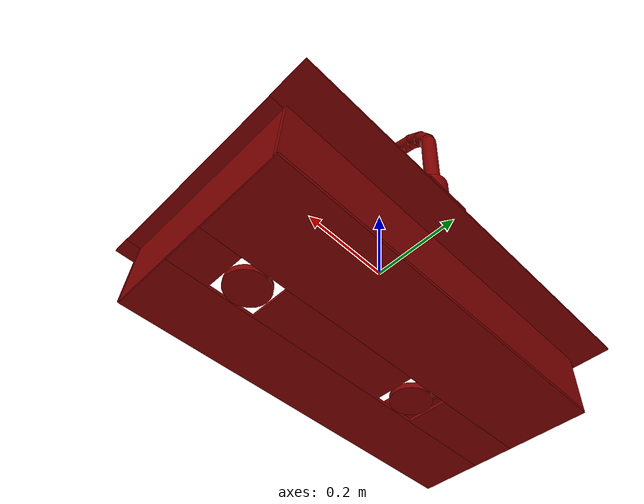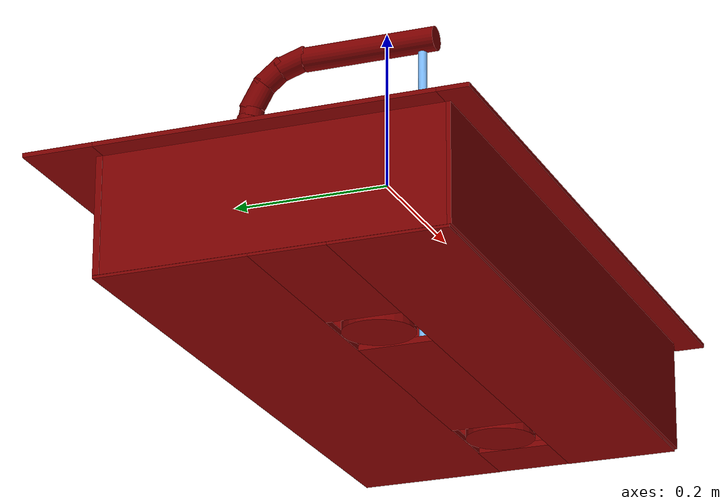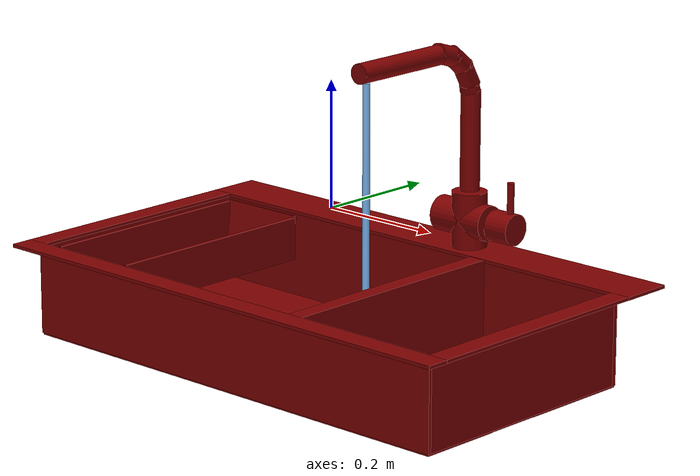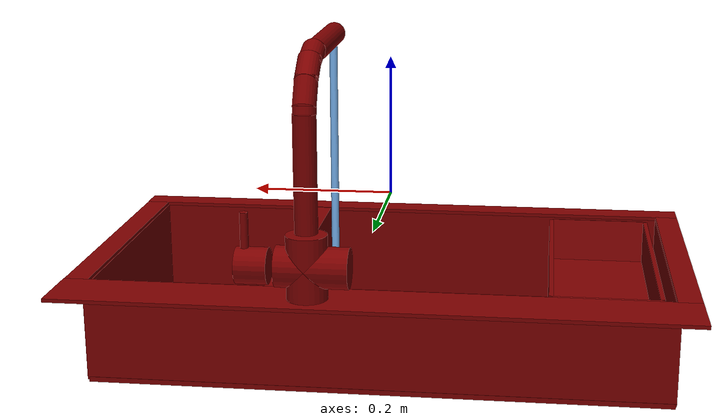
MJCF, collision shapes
<mujoco model="model">
  <compiler angle="radian"/>
  <asset>
    <mesh file="visuals/handle.obj" name="handle_vis"/>
    <mesh file="visuals/Body001.obj" name="Body001_vis"/>
    <mesh file="visuals/Funnel001.obj" name="Funnel001_vis"/>
    <mesh file="visuals/Funnel002.obj" name="Funnel002_vis"/>
    <mesh file="visuals/Shelf001.obj" name="Shelf001_vis"/>
    <mesh file="visuals/spout.obj" name="spout_vis"/>
    <texture file="visuals/T_BC001.png" name="Body001_material" type="2d"/>
    <material name="Body001_material" rgba="1 1 1 1.0" texture="Body001_material" shininess="2" specular="2"/>
    <texture file="visuals/T_BC001.png" name="handle_material" type="2d"/>
    <material name="handle_material" rgba="1 1 1 1.0" texture="handle_material" shininess="3" specular="3"/>
    <texture file="visuals/T_BC001.png" name="Funnel001_material" type="2d"/>
    <material name="Funnel001_material" rgba="1 1 1 1.0" texture="Funnel001_material" shininess="3" specular="3"/>
    <texture file="visuals/T_BC001.png" name="Funnel002_material" type="2d"/>
    <material name="Funnel002_material" rgba="1 1 1 1.0" texture="Funnel002_material" shininess="3" specular="3"/>
    <texture file="visuals/T_BC001.png" name="Shelf001_material" type="2d"/>
    <material name="Shelf001_material" rgba="1 1 1 1.0" texture="Shelf001_material" shininess="3" specular="3"/>
    <texture file="visuals/T_BC001.png" name="spout_material" type="2d"/>
    <material name="spout_material" rgba="1 1 1 1.0" texture="spout_material" shininess="3" specular="3"/>
  </asset>
  <default>
    <default class="visual">
      <geom conaffinity="0" contype="0" group="1" type="mesh"/>
    </default>
    <default class="collision">
      <geom group="0" rgba="0.5 0 0 0.5"/>
    </default>
    <default class="spawn">
      <geom group="0" rgba="1 1 1 0.5" contype="0" conaffinity="0"/>
      <site group="0" rgba="1 1 1 0.5"/>
    </default>
    <default class="region">
      <geom group="1" conaffinity="0" contype="0" rgba="0 1 0 0"/>
    </default>
  </default>
  <worldbody>
    <body>
      <body name="object">
        <geom mesh="Body001_vis" type="mesh" solimp="0.998 0.998 0.001" solref="0.001 1" density="100" friction="0.95 0.3 0.1" class="visual" material="Body001_material"/>
        <geom class="collision" type="box" pos="0.0005734110600315034 0.22136014699935913 -0.09204170852899551" size="0.43668481707572937 0.04289872944355011 0.0026069714222103357" quat="1.0 0.0 0.0 0.0"/>
        <geom class="collision" type="box" pos="0.0005734110600315034 -0.24535125494003296 -0.09204170852899551" size="0.43668481707572937 0.018816210329532623 0.0026069714222103357" quat="1.0 0.0 0.0 0.0"/>
        <geom class="collision" type="box" pos="-0.4192689061164856 -0.024012763053178787 -0.09204170852899551" size="0.016842521727085114 0.2039448618888855 0.0026069714222103357" quat="1.0 0.0 0.0 0.0"/>
        <geom class="collision" type="box" pos="0.41970449686050415 -0.024012763053178787 -0.09204170852899551" size="0.016842521727085114 0.2039448618888855 0.0026069714222103357" quat="1.0 0.0 0.0 0.0"/>
        <geom class="collision" type="box" pos="0.4047008156776428 -0.024012763053178787 -0.16496659815311432" size="0.0031250896863639355 0.2039448618888855 0.07081712037324905" quat="1.0 0.0 0.0 0.0"/>
        <geom class="collision" type="box" pos="-0.4047278165817261 -0.024012763053178787 -0.16496659815311432" size="0.003121054032817483 0.2039448618888855 0.07081712037324905" quat="1.0 0.0 0.0 0.0"/>
        <geom class="collision" type="box" pos="0.0004180834803264588 -0.22987139225006104 -0.16496659815311432" size="0.4084402918815613 0.002540157176554203 0.07081712037324905" quat="1.0 0.0 0.0 0.0"/>
        <geom class="collision" type="box" pos="0.00019216196960769594 0.1828685700893402 -0.16496659815311432" size="0.40870606899261475 0.003984043374657631 0.07081712037324905" quat="1.0 0.0 0.0 0.0"/>
        <geom class="collision" type="box" pos="-0.00043701304821297526 0.09483062475919724 -0.2353862076997757" size="0.4069112539291382 0.09264666587114334 0.0037265042774379253" quat="1.0 0.0 0.0 0.0"/>
        <geom class="collision" type="box" pos="-0.00043701304821297526 -0.15984255075454712 -0.2353862076997757" size="0.4069112539291382 0.07010547071695328 0.0037265042774379253" quat="1.0 0.0 0.0 0.0"/>
        <geom class="collision" type="box" pos="-0.29628050327301025 -0.043871764093637466 -0.2353862076997757" size="0.11106777936220169 0.04724905639886856 0.0037265042774379253" quat="1.0 0.0 0.0 0.0"/>
        <geom class="collision" type="box" pos="0.07090684771537781 -0.043871764093637466 -0.2353862076997757" size="0.1567329615354538 0.04724905639886856 0.0037265042774379253" quat="1.0 0.0 0.0 0.0"/>
        <geom class="collision" type="box" pos="0.3645913600921631 -0.043871764093637466 -0.2353862076997757" size="0.041106171905994415 0.04724905639886856 0.0037265042774379253" quat="1.0 0.0 0.0 0.0"/>
        <geom class="collision" type="box" pos="0.14036232233047485 -0.024012763053178787 -0.16301009058952332" size="0.01370250340551138 0.2039448618888855 0.07277360558509827" quat="1.0 0.0 0.0 0.0"/>
        <geom class="collision" type="cylinder" pos="0.08613811433315277 0.22094060480594635 -0.04586746171116829" size="0.028146835044026375 0.04497091472148895" quat="1.0 0.0 0.0 0.0"/>
        <geom class="collision" type="cylinder" pos="0.07829295098781586 0.22094060480594635 -0.04586746171116829" size="0.028146835044026375 0.049508947879076004" quat="0.7071068286895752 -0.0 0.7071067690849304 0.0"/>
        <body name="handle">
          <joint axis="1.0 0.0 0.0" pos="0.15646933019161224 0.22136735916137695 -0.0468406118452549" limited="true" name="handle_joint_hinge_0" type="hinge" range="-0.7853981633974483 0.7853981633974483" damping="1" frictionloss="1" armature=".01" stiffness="0.05"/>
          <joint axis="0.0 1.0 0.0" pos="0.15646933019161224 0.22136735916137695 -0.0468406118452549" limited="true" name="handle_joint_hinge_1" type="hinge" range="0.0 0.17453292519943295" damping="1" frictionloss="1" armature=".01" stiffness="0.05"/>
          <geom mesh="handle_vis" type="mesh" solimp="0.998 0.998 0.001" solref="0.001 1" density="100" friction="0.95 0.3 0.1" class="visual" material="handle_material"/>
          <geom class="collision" type="cylinder" pos="0.15915003418922424 0.22103966772556305 -0.04616466537117958" size="0.025074021890759468 0.021762199699878693" quat="0.7071068286895752 -0.0 0.7071067690849304 0.0"/>
          <geom class="collision" type="cylinder" pos="0.1693095564842224 0.22134223580360413 0.002479029819369316" size="0.005681407637894154 0.024712152779102325" quat="1.0 0.0 0.0 0.0"/>
        </body>
        <body name="Funnel001">
          <joint axis="0.0 0.0 1.0" pos="0.27627700567245483 -0.04338763654232025 -0.23521018028259277" limited="true" name="Funnel001_joint" range="0.0 0.06" type="slide" damping="0.5" frictionloss="0.5" armature=".01" stiffness="0.05"/>
          <geom mesh="Funnel001_vis" type="mesh" solimp="0.998 0.998 0.001" solref="0.001 1" density="100" friction="0.95 0.3 0.1" class="visual" material="Funnel001_material"/>
          <geom class="collision" type="cylinder" pos="0.2759148180484772 -0.043398354202508926 -0.23407790064811707" size="0.04357573762536049 0.0062309931963682175" quat="1.0 0.0 0.0 0.0"/>
        </body>
        <body name="Funnel002">
          <joint axis="0.0 0.0 1.0" pos="-0.13680411875247955 -0.04338793456554413 -0.23521023988723755" limited="true" name="Funnel002_joint" range="0.0 0.06" type="slide" damping="0.5" frictionloss="0.5" armature=".01" stiffness="0.05"/>
          <geom mesh="Funnel002_vis" type="mesh" solimp="0.998 0.998 0.001" solref="0.001 1" density="100" friction="0.95 0.3 0.1" class="visual" material="Funnel002_material"/>
          <geom class="collision" type="cylinder" pos="-0.13653616607189178 -0.043398354202508926 -0.23407790064811707" size="0.04357573762536049 0.0062309931963682175" quat="1.0 0.0 0.0 0.0"/>
        </body>
        <body name="Shelf001">
          <joint axis="0.0 0.0 1.0" pos="-0.3121742308139801 -0.014497920870780945 -0.12675797939300537" limited="true" name="Shelf001_joint" range="0.0 0.06" type="slide" damping="1" frictionloss="1" armature=".01" stiffness="0.05"/>
          <geom mesh="Shelf001_vis" type="mesh" solimp="0.998 0.998 0.001" solref="0.001 1" density="100" friction="0.95 0.3 0.1" class="visual" material="Shelf001_material"/>
          <geom class="collision" type="box" pos="-0.3849445581436157 -0.025455325841903687 -0.12914344668388367" size="0.003121054032817483 0.18550589680671692 0.034993961453437805" quat="1.0 0.0 0.0 0.0"/>
          <geom class="collision" type="box" pos="-0.23627246916294098 -0.025455325841903687 -0.12914344668388367" size="0.003121054032817483 0.18550589680671692 0.034993961453437805" quat="1.0 0.0 0.0 0.0"/>
          <geom class="collision" type="box" pos="-0.31244686245918274 -0.21393683552742004 -0.1303429752588272" size="0.07432298362255096 0.0024261516518890858 0.034993961453437805" quat="0.9940372705459595 0.10904084146022797 0.0 0.0"/>
          <geom class="collision" type="box" pos="-0.31244686245918274 0.15982644259929657 -0.1280832588672638" size="0.07432298362255096 0.0024261516518890858 0.034993961453437805" quat="0.9963814616203308 -0.08499402552843094 -0.0 0.0"/>
          <geom class="collision" type="box" pos="-0.311740905046463 -0.025455325841903687 -0.1612047553062439" size="0.07255266606807709 0.18550589680671692 0.002932657953351736" quat="1.0 0.0 0.0 0.0"/>
        </body>
        <body name="spout">
          <joint axis="0.0 0.0 1.0" pos="0.08549201488494873 0.22095036506652832 0.12118351459503174" limited="true" name="spout_joint" range="-0.7853981633974483 0.7853981633974483" type="hinge" damping="1" frictionloss="1" armature=".01" stiffness="0.05"/>
          <site type="cylinder" rgba="0.5 0.75 1 1" size="0.005716228857636452 0.222311332821846" pos="0.08504269272089005 -0.014069250784814358 -0.011466354131698608" name="water"/>
          <geom mesh="spout_vis" type="mesh" solimp="0.998 0.998 0.001" solref="0.001 1" density="100" friction="0.95 0.3 0.1" class="visual" material="spout_material"/>
          <geom class="collision" type="cylinder" pos="0.08613811433315277 0.22094060480594635 0.08081535249948502" size="0.015766173601150513 0.07984970510005951" quat="1.0 0.0 0.0 0.0"/>
          <geom class="collision" type="cylinder" pos="0.08613811433315277 0.209701806306839 0.18625372648239136" size="0.015766173601150513 0.020500902086496353" quat="0.9670015573501587 0.254770427942276 0.0 0.0"/>
          <geom class="collision" type="cylinder" pos="0.08613811433315277 0.18840664625167847 0.21167787909507751" size="0.015766173601150513 0.020500902086496353" quat="0.9004788994789124 0.4348996877670288 0.0 0.0"/>
          <geom class="collision" type="cylinder" pos="0.08613811433315277 0.2180868238210678 0.16426309943199158" size="0.015766173601150513 0.005798363126814365" quat="0.9954514503479004 0.09526995569467545 0.0 0.0"/>
          <geom class="collision" type="cylinder" pos="0.08613811433315277 0.16084504127502441 0.22503070533275604" size="0.015766173601150513 0.020500902086496353" quat="0.8072229027748108 0.5902467370033264 0.0 0.0"/>
          <geom class="collision" type="cylinder" pos="0.08613811433315277 0.05604376643896103 0.22776974737644196" size="0.015766173601150513 0.08815393596887589" quat="0.7071067094802856 0.7071068286895752 0.0 0.0"/>
        </body>
        <geom class="region" name="reg_main" type="box" pos="0.0 -2.711266279220581e-05 -0.16387587785720825" size="0.4364980459213257 0.26363879442214966 0.07312781363725662"/>
        <geom class="region" name="reg_basin_left" type="box" pos="-0.04816032201051712 -0.024156972765922546 -0.16482384130358696" size="0.1748737171292305 0.2011464387178421 0.0688554234802723"/>
        <geom class="region" name="reg_basin_right" type="box" pos="0.2768932431936264 -0.024156972765922546 -0.16482384130358696" size="0.12371130287647247 0.2011464387178421 0.0688554234802723"/>
      </body>
    </body>
  </worldbody>
  <actuator>
    <motor name="handle_joint_hinge_0_actuator" joint="handle_joint_hinge_0" gear="10"/>
    <motor name="handle_joint_hinge_1_actuator" joint="handle_joint_hinge_1" gear="10"/>
    <motor name="Funnel001_joint_actuator" joint="Funnel001_joint" gear="10"/>
    <motor name="Funnel002_joint_actuator" joint="Funnel002_joint" gear="10"/>
    <motor name="Shelf001_joint_actuator" joint="Shelf001_joint" gear="30"/>
    <motor name="spout_joint_actuator" joint="spout_joint" gear="10"/>
  </actuator>
</mujoco>
